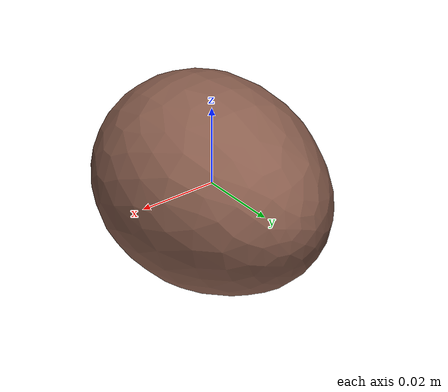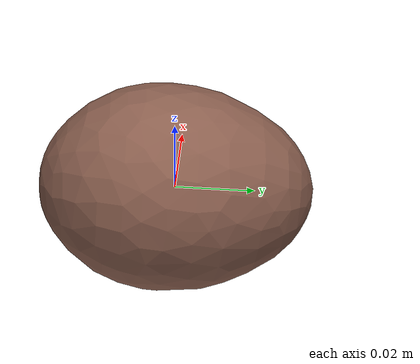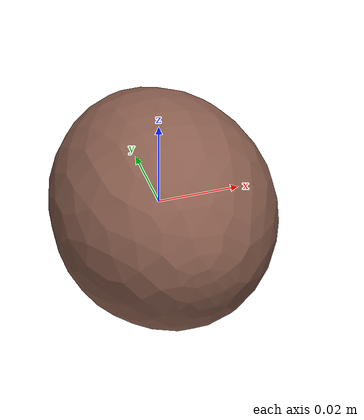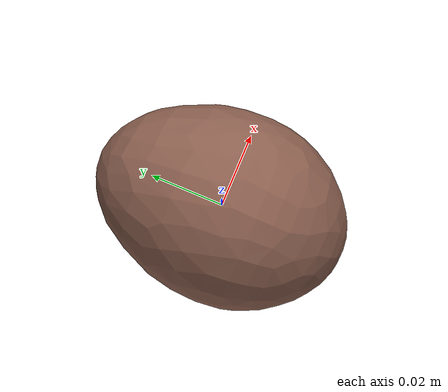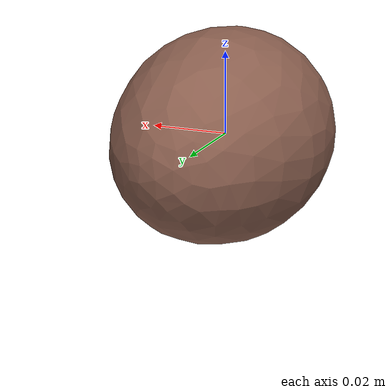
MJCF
<mujoco model="Egg_4">
  <compiler autolimits="true" boundmass="0.01" angle="radian"/>
  <default>
    <default class="/">
      <default class="__VISUAL_MJT__">
        <geom contype="0" conaffinity="0" group="0"/>
      </default>
      <default class="__STRUCTURAL_MJT__">
        <geom contype="8" conaffinity="15" group="4" friction="0.90000000000000002 0.90000000000000002 0.001" solref="0.025000000000000001 1" solimp="0.998 0.998 0.001"/>
      </default>
      <default class="__DYNAMIC_MJT__">
        <geom contype="1" conaffinity="15" group="4" friction="0.90000000000000002 0.90000000000000002 0.001" solref="0.025000000000000001 1" solimp="0.998 0.998 0.001"/>
      </default>
    </default>
  </default>
  <asset>
    <material name="material_Egg4_Mat" class="/" specular="0.5" shininess="0.5" rgba="0.53676469999999998 0.36726049999999999 0.3039036 1"/>
    <mesh name="Egg_4_egg_4" class="/" file="Egg_4_egg_4/Egg_4_egg_4.obj" scale="1 1 1"/>
  </asset>
  <worldbody>
    <body name="Egg_4">
      <joint name="Egg_4_free" class="/" type="free" pos="0 0 0" axis="0 0 1" stiffness="0" range="0 0" armature="0" damping="0.10000000000000001" frictionloss="0"/>
      <body name="Egg_4_egg_4" pos="-0 0 -9.0000000000000006e-05" quat="1 0 0 0">
        <geom name="Egg_4_egg_4" class="__VISUAL_MJT__" type="mesh" material="material_Egg4_Mat" shellinertia="true" mesh="Egg_4_egg_4"/>
        <geom name="Egg_4_PrimitiveCollider_0" class="__DYNAMIC_MJT__" type="capsule" size="0.023526307195425034 0.0094252899289131165" rgba="0 1 0 1" pos="-0 0 0" quat="0.70710678118654757 0.70710678118654746 0 0"/>
      </body>
    </body>
  </worldbody>
</mujoco>
